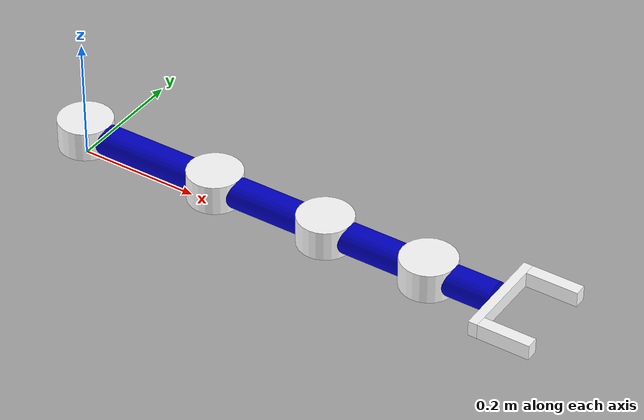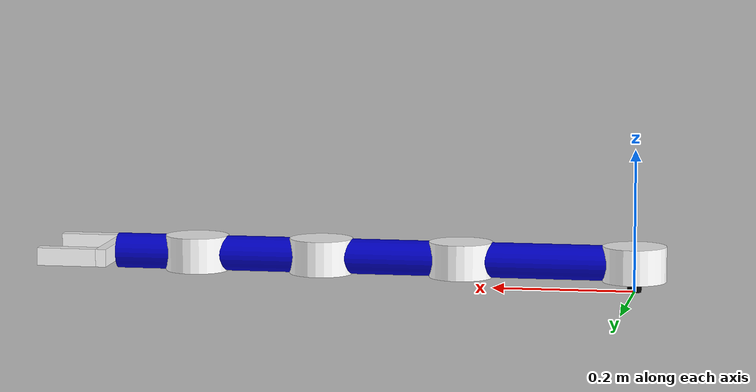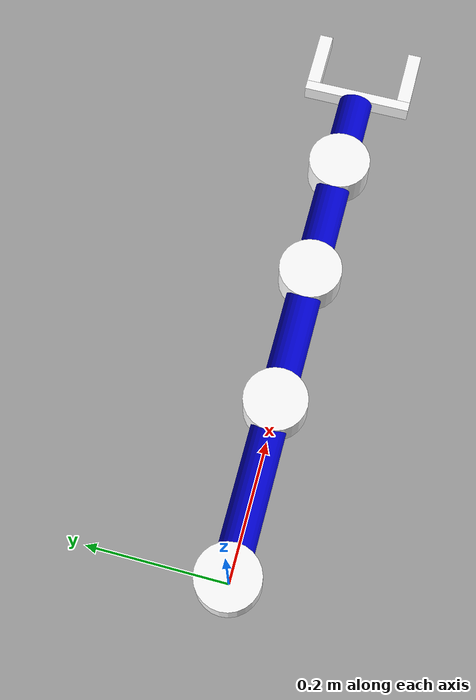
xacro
<?xml version="1.0"?>
<!-- Planar 4DoF robot (based on Revolute-Revolute Manipulator) -->
<robot name="planar4dof" xmlns:xacro="http://www.ros.org/wiki/xacro">

  <!-- Constants for robot dimensions -->
  <xacro:property name="PI" value="3.1415926535897931"/>
  <xacro:property name="base_z" value="0.0" /> <!-- Height from world to base_link -->
  <xacro:property name="radius_base" value="0.01" />
  <xacro:property name="inner_radius_base" value="0.008" />
  <xacro:property name="joints_radius" value="0.025" />
  <xacro:property name="joints_inner_radius" value="0.0245" />
  <xacro:property name="height_base" value="0.03" /> <!-- Base -->
  <xacro:property name="height1" value="0.21" /> <!-- Link 1 -->
  <xacro:property name="height2" value="0.13" /> <!-- Link 2 -->
  <xacro:property name="height3" value="0.11" /> <!-- Link 3 -->
  <xacro:property name="height4" value="0.08" /> <!-- Link 3 -->
  <xacro:property name="camera_link" value="0.05" /> <!-- Size of square 'camera' box -->
  <xacro:property name="camera_x" value="0.0" /> <!-- X position 'camera' -->
  <xacro:property name="camera_y" value="0.0" /> <!-- Y position 'camera' -->
  <xacro:property name="camera_z" value="1.5" /> <!-- Z position 'camera' -->
  <xacro:property name="axel_offset" value="${joints_radius + 0.01}" />
  <xacro:property name="radius_axel" value="${axel_offset + 0.01}" />
  <xacro:property name="height_axel" value="${joints_radius*2}" />
  <xacro:property name="md_base" value="7850" />
  <xacro:property name="md_links" value="2700" />
  <xacro:property name="mass_base" value="${md_base*PI*(radius_base-inner_radius_base)*height_base}" />
  <xacro:property name="mass1" value="${md_links*PI*(joints_radius-joints_inner_radius)*height1}" />
  <xacro:property name="mass2" value="${md_links*PI*(joints_radius-joints_inner_radius)*height2}" />
  <xacro:property name="mass3" value="${md_links*PI*(joints_radius-joints_inner_radius)*height3}" />
  <xacro:property name="mass4" value="${md_links*PI*(joints_radius-joints_inner_radius)*height4}" />
  <xacro:property name="yt" value="0.16" />
  <xacro:property name="y1" value="0.02" />
  <xacro:property name="zt" value="0.100" />
  <xacro:property name="z1" value="0.015" />
  <xacro:property name="xt" value="0.025" />

  <!-- Import all Gazebo-customization elements, including Gazebo colors -->
  <xacro:include filename="$(find planar4dof_description)/urdf/planar4dof.gazebo" />
  <!-- Import Rviz colors -->
  <xacro:include filename="$(find planar4dof_description)/urdf/materials.xacro" />

  <!-- Used for fixing robot to Gazebo 'base_link' -->
  <link name="world"/>

  <joint name="fixed" type="fixed">
    <parent link="world"/>
    <child link="base_link"/>
    <origin xyz="0 0 ${base_z}" rpy="0 0 0"/>
  </joint>

  <link name="base_link">
    <collision>
      <origin xyz="0 0 ${height_base/2}" rpy="0 0 0"/>
      <geometry>
        <cylinder length="${height_base}" radius="${radius_base}"/>
      </geometry>
    </collision>

    <visual>
      <origin xyz="0 0 ${height_base/2}" rpy="0 0 0"/>
      <geometry>
        <cylinder length="${height_base}" radius="${radius_base}"/>
      </geometry>
      <material name="black"/>
    </visual>

    <inertial>
      <origin xyz="0 0 ${height_base/2}" rpy="0 0 0"/>
      <mass value="${mass_base}"/>
      <inertia
      ixx="${mass_base / 12.0 * (3*radius_base*radius_base + height_base*height_base)}" ixy="0.0" ixz="0.0"
      iyy="${mass_base / 12.0 * (3*radius_base*radius_base + height_base*height_base)}" iyz="0.0"
      izz="${mass_base / 2.0 * (radius_base*radius_base)}"/>
    </inertial>
  </link>

  <joint name="joint0" type="continuous">
      <parent link="base_link"/>
      <child link="coupler0"/>
      <origin xyz="0 0 ${height_base/2+joints_radius}" rpy="0 0 0"/>
      <axis xyz="0 0 1"/>
      <dynamics damping="0.7"/>
  </joint>

  <link name="coupler0">
    <visual>
      <origin xyz="0 0 0" rpy="0 0 0"/>
      <geometry>
        <cylinder length="${height_axel}" radius="${radius_axel}"/>
      </geometry>
      <material name="white"/>
    </visual>
  </link>

  <joint name="coupler_joint0" type="fixed">
    <parent link="coupler0"/>
    <child link="link1"/>
    <origin xyz="0 0 0" rpy="0 0 0"/>
  </joint>

  <!-- Base Link -->
  <link name="link1">
    <collision>
      <origin xyz="${height1/2} 0 0" rpy="${PI/2} 0 ${PI/2}"/>
      <geometry>
        <cylinder length="${height1}" radius="${joints_radius}"/>
      </geometry>
    </collision>

    <visual>
      <origin xyz="${height1/2} 0 0" rpy="${PI/2} 0 ${PI/2}"/>
      <geometry>
        <cylinder length="${height1}" radius="${joints_radius}"/>
      </geometry>
      <material name="blue"/>
    </visual>

    <inertial>
      <origin xyz="${height1/2} 0 0" rpy="${PI/2} 0 ${PI/2}"/>
      <mass value="${mass1}"/>
      <inertia
      ixx="${mass1 / 12.0 * (3*joints_radius*joints_radius + height1*height1)}" ixy="0.0" ixz="0.0"
      iyy="${mass1 / 12.0 * (3*joints_radius*joints_radius + height1*height1)}" iyz="0.0"
      izz="${mass1 / 2.0 * (joints_radius*joints_radius)}"/>
    </inertial>

  </link>

  <joint name="joint1" type="continuous">
    <parent link="link1"/>
    <child link="coupler1"/>
    <origin xyz="${height1 + axel_offset} 0 0" rpy="0 0 0"/>
    <axis xyz="0 0 1"/>
    <dynamics damping="0.7"/>
  </joint>

  <link name="coupler1">
    <visual>
      <origin xyz="0 0 0" rpy="0 0 0"/>
      <geometry>
        <cylinder length="${height_axel}" radius="${radius_axel}"/>
      </geometry>
      <material name="white"/>
    </visual>
  </link>

  <joint name="coupler_joint1" type="fixed">
    <parent link="coupler1"/>
    <child link="link2"/>
    <origin xyz="${axel_offset} 0 0" rpy="0 0 0"/>
  </joint>

   <!--Middle Link-->
  <link name="link2">
    <collision>
      <origin xyz="${height2/2} 0 0" rpy="${PI/2} 0 ${PI/2}"/>
      <geometry>
        <cylinder length="${height2}" radius="${joints_radius}"/>
      </geometry>
    </collision>

    <visual>
      <origin xyz="${height2/2} 0 0" rpy="${PI/2} 0 ${PI/2}"/>
      <geometry>
        <cylinder length="${height2}" radius="${joints_radius}"/>
      </geometry>
      <material name="blue"/>
    </visual>

    <inertial>
      <origin xyz="${height2/2} 0 0" rpy="${PI/2} 0 ${PI/2}"/>
      <mass value="${mass2}"/>
      <inertia
      ixx="${mass2 / 12.0 * (3*joints_radius*joints_radius + height2*height2)}" ixy="0.0" ixz="0.0"
      iyy="${mass2 / 12.0 * (3*joints_radius*joints_radius + height2*height2)}" iyz="0.0"
      izz="${mass2 / 2.0 * (joints_radius*joints_radius)}"/>
    </inertial>
  </link>

  <joint name="joint2" type="continuous">
    <parent link="link2"/>
    <child link="coupler2"/>
    <origin xyz="${height2 + axel_offset} 0 0" rpy="0 0 0"/>
    <axis xyz="0 0 1"/>
    <dynamics damping="0.7"/>
  </joint>

  <link name="coupler2">
    <visual>
      <origin xyz="0 0 0" rpy="0 0 0"/>
      <geometry>
        <cylinder length="${height_axel}" radius="${radius_axel}"/>
      </geometry>
      <material name="white"/>
    </visual>
  </link>

  <joint name="coupler_joint2" type="fixed">
    <parent link="coupler2"/>
    <child link="link3"/>
    <origin xyz="${axel_offset} 0 0" rpy="0 0 0"/>
  </joint>

   <!--Top Link-->
  <link name="link3">
    <collision>
      <origin xyz="${height3/2} 0 0" rpy="${PI/2} 0 ${PI/2}"/>
      <geometry>
        <cylinder length="${height3}" radius="${joints_radius}"/>
      </geometry>
    </collision>

    <visual>
      <origin xyz="${height3/2} 0 0" rpy="${PI/2} 0 ${PI/2}"/>
      <geometry>
        <cylinder length="${height3}" radius="${joints_radius}"/>
      </geometry>
      <material name="blue"/>
    </visual>

    <inertial>
      <origin xyz="${height3/2} 0 0" rpy="${PI/2} 0 ${PI/2}"/>
      <mass value="${mass3}"/>
      <inertia
      ixx="${mass3 / 12.0 * (3*joints_radius*joints_radius + height3*height3)}" ixy="0.0" ixz="0.0"
      iyy="${mass3 / 12.0 * (3*joints_radius*joints_radius + height3*height3)}" iyz="0.0"
      izz="${mass3 / 2.0 * (joints_radius*joints_radius)}"/>
    </inertial>
  </link>

  <joint name="joint3" type="continuous">
      <parent link="link3"/>
      <child link="coupler3"/>
      <origin xyz="${height3 + axel_offset} 0 0" rpy="0 0 0"/>
      <axis xyz="0 0 1"/>
      <dynamics damping="0.7"/>
  </joint>

  <link name="coupler3">
      <visual>
          <origin xyz="0 0 0" rpy="0 0 0"/>
          <geometry>
              <cylinder length="${height_axel}" radius="${radius_axel}"/>
          </geometry>
          <material name="white"/>
      </visual>
  </link>

  <joint name="coupler_joint3" type="fixed">
      <parent link="coupler3"/>
      <child link="link4"/>
      <origin xyz="${axel_offset} 0 0" rpy="0 0 0"/>
  </joint>

  <!--Top Link-->
  <link name="link4">
      <collision>
          <origin xyz="${height4/2} 0 0" rpy="${PI/2} 0 ${PI/2}"/>
          <geometry>
              <cylinder length="${height4}" radius="${joints_radius}"/>
          </geometry>
      </collision>

      <visual>
          <origin xyz="${height4/2} 0 0" rpy="${PI/2} 0 ${PI/2}"/>
          <geometry>
              <cylinder length="${height4}" radius="${joints_radius}"/>
          </geometry>
          <material name="blue"/>
      </visual>

      <inertial>
          <origin xyz="${height4/2} 0 0" rpy="${PI/2} 0 ${PI/2}"/>
          <mass value="${mass4}"/>
          <inertia
                  ixx="${mass4 / 12.0 * (3*joints_radius*joints_radius + height4*height4)}" ixy="0.0" ixz="0.0"
                  iyy="${mass4 / 12.0 * (3*joints_radius*joints_radius + height4*height4)}" iyz="0.0"
                  izz="${mass4 / 2.0 * (joints_radius*joints_radius)}"/>
      </inertial>
  </link>

  <joint name="gripper_joint" type="fixed">
      <parent link="link4"/>
      <child link="gripper"/>
      <origin xyz="${height4} 0 0" rpy="0 0 0"/>
  </joint>

  <link name="gripper">
      <visual>
          <origin xyz="${z1/2} 0 0" rpy="${PI/2} 0 ${PI/2}"/>
          <geometry>
              <box size="${yt} ${xt} ${z1}"/>
          </geometry>
          <material name="white"/>
      </visual>
      <visual>
          <origin xyz="${z1+(zt-z1)/2} ${yt/2-y1/2} 0" rpy="${PI/2} 0 ${PI/2}"/>
          <geometry>
              <box size="${y1} ${xt} ${zt-z1}"/>
          </geometry>
          <material name="white"/>
      </visual>
      <visual>
          <origin xyz="${z1+(zt-z1)/2} -${yt/2-y1/2} 0" rpy="${PI/2} 0 ${PI/2}"/>
          <geometry>
              <box size="${y1} ${xt} ${zt-z1}"/>
          </geometry>
          <material name="white"/>
      </visual>

      <collision>
          <origin xyz="${z1/2} 0 0" rpy="${PI/2} 0 ${PI/2}"/>
          <geometry>
              <box size="${yt} ${xt} ${z1}"/>
          </geometry>
          <material name="white"/>
      </collision>
      <collision>
          <origin xyz="${z1+(zt-z1)/2} ${yt/2-y1/2} 0" rpy="${PI/2} 0 ${PI/2}"/>
          <geometry>
              <box size="${y1} ${xt} ${zt-z1}"/>
          </geometry>
          <material name="white"/>
      </collision>
      <collision>
          <origin xyz="${z1+(zt-z1)/2} -${yt/2-y1/2} 0" rpy="${PI/2} 0 ${PI/2}"/>
          <geometry>
              <box size="${y1} ${xt} ${zt-z1}"/>
          </geometry>
          <material name="white"/>
      </collision>
  </link>

  <!--&lt;!&ndash; Hokuyo Laser &ndash;&gt;-->

  <joint name="camera_joint" type="fixed">
    <axis xyz="0 1 0" />
    <origin xyz="${camera_x} ${camera_y} ${camera_z}" rpy="0 ${PI/2} ${PI/2}"/>
    <parent link="base_link"/>
    <child link="camera_link"/>
  </joint>

  <!-- Camera -->
  <link name="camera_link">

  </link>

  <!-- generate an optical frame http://www.ros.org/reps/rep-0103.html#suffix-frames
      so that ros and opencv can operate on the camera frame correctly -->
  <joint name="camera_optical_joint" type="fixed">
    <!-- these values have to be these values otherwise the gazebo camera image
        won't be aligned properly with the frame it is supposedly originating from -->
    <origin xyz="0 0 0" rpy="${-pi/2} 0 ${-pi/2}"/>
    <parent link="camera_link"/>
    <child link="camera_link_optical"/>
  </joint>

  <link name="camera_link_optical">
  </link>

  <transmission name="tran0">
    <type>transmission_interface/SimpleTransmission</type>
    <joint name="joint0">
      <hardwareInterface>hardware_interface/EffortJointInterface</hardwareInterface>
    </joint>
    <actuator name="motor0">
      <hardwareInterface>hardware_interface/EffortJointInterface</hardwareInterface>
      <mechanicalReduction>1</mechanicalReduction>
    </actuator>
  </transmission>

  <transmission name="tran1">
    <type>transmission_interface/SimpleTransmission</type>
    <joint name="joint1">
      <hardwareInterface>hardware_interface/EffortJointInterface</hardwareInterface>
    </joint>
    <actuator name="motor1">
      <hardwareInterface>hardware_interface/EffortJointInterface</hardwareInterface>
      <mechanicalReduction>1</mechanicalReduction>
    </actuator>
  </transmission>

  <transmission name="tran2">
    <type>transmission_interface/SimpleTransmission</type>
    <joint name="joint2">
      <hardwareInterface>hardware_interface/EffortJointInterface</hardwareInterface>
    </joint>
    <actuator name="motor2">
      <hardwareInterface>hardware_interface/EffortJointInterface</hardwareInterface>
      <mechanicalReduction>1</mechanicalReduction>
    </actuator>
  </transmission>

  <transmission name="tran3">
      <type>transmission_interface/SimpleTransmission</type>
      <joint name="joint3">
          <hardwareInterface>hardware_interface/EffortJointInterface</hardwareInterface>
      </joint>
      <actuator name="motor3">
          <hardwareInterface>hardware_interface/EffortJointInterface</hardwareInterface>
          <mechanicalReduction>1</mechanicalReduction>
      </actuator>
  </transmission>

</robot>

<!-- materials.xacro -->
<robot>
  <material name="red">
    <color rgba="0.8 0.0 0.0 1.0"/>
  </material>

  <material name="green">
    <color rgba="0.0 0.8 0.0 1.0"/>
  </material>

  <material name="blue">
    <color rgba="0.0 0.0 0.8 1.0"/>
  </material>

  <material name="black">
    <color rgba="0.0 0.0 0.0 1.0"/>
  </material>

  <material name="white">
    <color rgba="1.0 1.0 1.0 1.0"/>
  </material>

  <material name="yellow">
    <color rgba="1.0 1.0 0.0 1.0"/>
  </material>

  <material name="grey">
    <color rgba="0.25 0.25 0.25 1.0"/>
  </material>

  <material name="orange">
    <color rgba="${255/255} ${140/255} 0 1.0"/>
  </material>

  <material name="brown">
    <color rgba="${139/255} ${69/255} ${19/255} 1.0"/>
  </material>

</robot>
